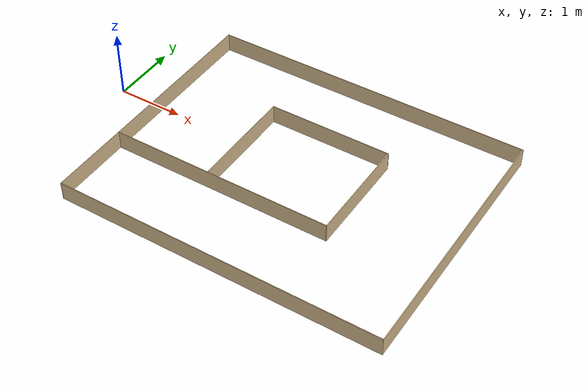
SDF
<?xml version='1.0'?>
<sdf version='1.6'>
  <model name='maze_simple_0'>
    <pose frame=''>3.15667 -0.263 0 0 -0 0</pose>
    <link name='Wall_0'>
      <collision name='Wall_0_Collision'>
        <geometry>
          <box>
            <size>4.861 0.01 0.28</size>
          </box>
        </geometry>
        <pose frame=''>0 0 0.14 0 -0 0</pose>
      </collision>
      <visual name='Wall_0_Visual'>
        <pose frame=''>0 0 0.14 0 -0 0</pose>
        <geometry>
          <box>
            <size>4.861 0.01 0.28</size>
          </box>
        </geometry>
        <material>
          <script>
            <uri>file://media/materials/scripts/gazebo.material</uri>
            <name>Gazebo/Grey</name>
          </script>
          <ambient>0.921569 0.807843 0.615686 1</ambient>
        </material>
      </visual>
      <pose frame=''>0.000832 -1.925 0 0 -0 0</pose>
    </link>
    <link name='Wall_1'>
      <collision name='Wall_1_Collision'>
        <geometry>
          <box>
            <size>3.86 0.01 0.28</size>
          </box>
        </geometry>
        <pose frame=''>0 0 0.14 0 -0 0</pose>
      </collision>
      <visual name='Wall_1_Visual'>
        <pose frame=''>0 0 0.14 0 -0 0</pose>
        <geometry>
          <box>
            <size>3.86 0.01 0.28</size>
          </box>
        </geometry>
        <material>
          <script>
            <uri>file://media/materials/scripts/gazebo.material</uri>
            <name>Gazebo/Grey</name>
          </script>
          <ambient>0.921569 0.807843 0.615686 1</ambient>
        </material>
      </visual>
      <pose frame=''>2.42633 0 0 0 -0 1.5708</pose>
    </link>
    <link name='Wall_2'>
      <collision name='Wall_2_Collision'>
        <geometry>
          <box>
            <size>4.8605 0.01 0.28</size>
          </box>
        </geometry>
        <pose frame=''>0 0 0.14 0 -0 0</pose>
      </collision>
      <visual name='Wall_2_Visual'>
        <pose frame=''>0 0 0.14 0 -0 0</pose>
        <geometry>
          <box>
            <size>4.8605 0.01 0.28</size>
          </box>
        </geometry>
        <material>
          <script>
            <uri>file://media/materials/scripts/gazebo.material</uri>
            <name>Gazebo/Grey</name>
          </script>
          <ambient>0.921569 0.807843 0.615686 1</ambient>
        </material>
      </visual>
      <pose frame=''>0.001332 1.925 0 0 -0 3.14159</pose>
    </link>
    <link name='Wall_3'>
      <collision name='Wall_3_Collision'>
        <geometry>
          <box>
            <size>3.86 0.01 0.28</size>
          </box>
        </geometry>
        <pose frame=''>0 0 0.14 0 -0 0</pose>
      </collision>
      <visual name='Wall_3_Visual'>
        <pose frame=''>0 0 0.14 0 -0 0</pose>
        <geometry>
          <box>
            <size>3.86 0.01 0.28</size>
          </box>
        </geometry>
        <material>
          <script>
            <uri>file://media/materials/scripts/gazebo.material</uri>
            <name>Gazebo/Grey</name>
          </script>
          <ambient>0.921569 0.807843 0.615686 1</ambient>
        </material>
      </visual>
      <pose frame=''>-2.42417 0 0 0 0 -1.57106</pose>
    </link>
    <link name='Wall_5'>
      <collision name='Wall_5_Collision'>
        <geometry>
          <box>
            <size>3.35983 0.01 0.28</size>
          </box>
        </geometry>
        <pose frame=''>0 0 0.14 0 -0 0</pose>
      </collision>
      <visual name='Wall_5_Visual'>
        <pose frame=''>0 0 0.14 0 -0 0</pose>
        <geometry>
          <box>
            <size>3.35983 0.01 0.28</size>
          </box>
        </geometry>
        <material>
          <script>
            <uri>file://media/materials/scripts/gazebo.material</uri>
            <name>Gazebo/Grey</name>
          </script>
          <ambient>0.921569 0.807843 0.615686 1</ambient>
        </material>
      </visual>
      <pose frame=''>-0.751668 -0.72 0 0 -0 0</pose>
    </link>
    <link name='Wall_6'>
      <collision name='Wall_6_Collision'>
        <geometry>
          <box>
            <size>1.61013 0.01 0.28</size>
          </box>
        </geometry>
        <pose frame=''>0 0 0.14 0 -0 0</pose>
      </collision>
      <visual name='Wall_6_Visual'>
        <pose frame=''>0 0 0.14 0 -0 0</pose>
        <geometry>
          <box>
            <size>1.61013 0.01 0.28</size>
          </box>
        </geometry>
        <material>
          <script>
            <uri>file://media/materials/scripts/gazebo.material</uri>
            <name>Gazebo/Grey</name>
          </script>
          <ambient>0.921569 0.807843 0.615686 1</ambient>
        </material>
      </visual>
      <pose frame=''>0.923332 0.08 0 0 -0 1.5708</pose>
    </link>
    <link name='Wall_7'>
      <collision name='Wall_7_Collision'>
        <geometry>
          <box>
            <size>1.86017 0.01 0.28</size>
          </box>
        </geometry>
        <pose frame=''>0 0 0.14 0 -0 0</pose>
      </collision>
      <visual name='Wall_7_Visual'>
        <pose frame=''>0 0 0.14 0 -0 0</pose>
        <geometry>
          <box>
            <size>1.86017 0.01 0.28</size>
          </box>
        </geometry>
        <material>
          <script>
            <uri>file://media/materials/scripts/gazebo.material</uri>
            <name>Gazebo/Grey</name>
          </script>
          <ambient>0.921569 0.807843 0.615686 1</ambient>
        </material>
      </visual>
      <pose frame=''>-0.001668 0.88 0 0 -0 3.14159</pose>
    </link>
    <link name='Wall_8'>
      <collision name='Wall_8_Collision'>
        <geometry>
          <box>
            <size>1.60987 0.01 0.28</size>
          </box>
        </geometry>
        <pose frame=''>0 0 0.14 0 -0 0</pose>
      </collision>
      <visual name='Wall_8_Visual'>
        <pose frame=''>0 0 0.14 0 -0 0</pose>
        <geometry>
          <box>
            <size>1.60987 0.01 0.28</size>
          </box>
        </geometry>
        <material>
          <script>
            <uri>file://media/materials/scripts/gazebo.material</uri>
            <name>Gazebo/Grey</name>
          </script>
          <ambient>0.921569 0.807843 0.615686 1</ambient>
        </material>
      </visual>
      <pose frame=''>-0.926668 0.08 0 0 0 -1.5708</pose>
    </link>
    <static>1</static>
  </model>
</sdf>
